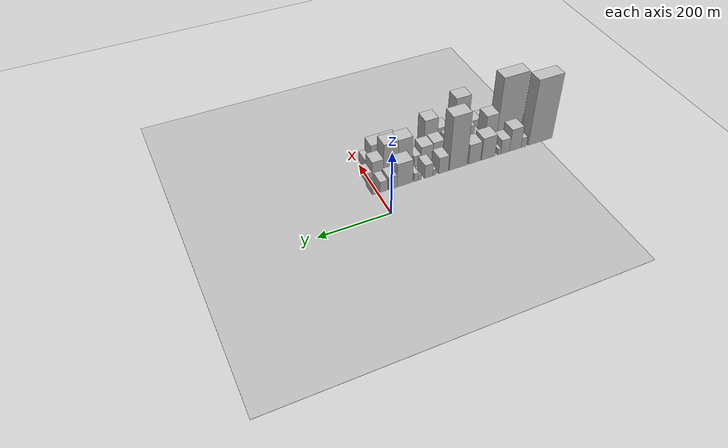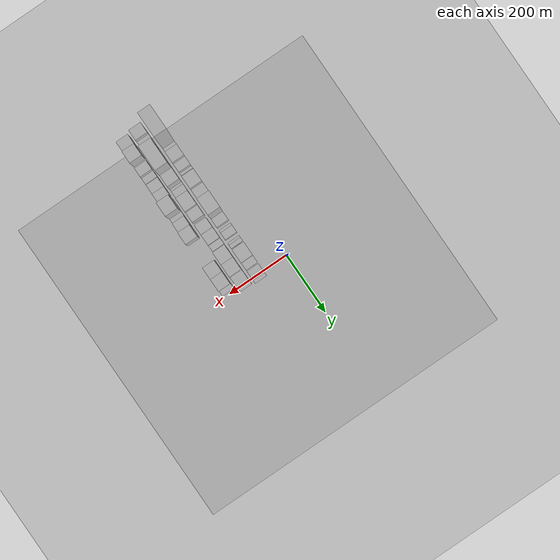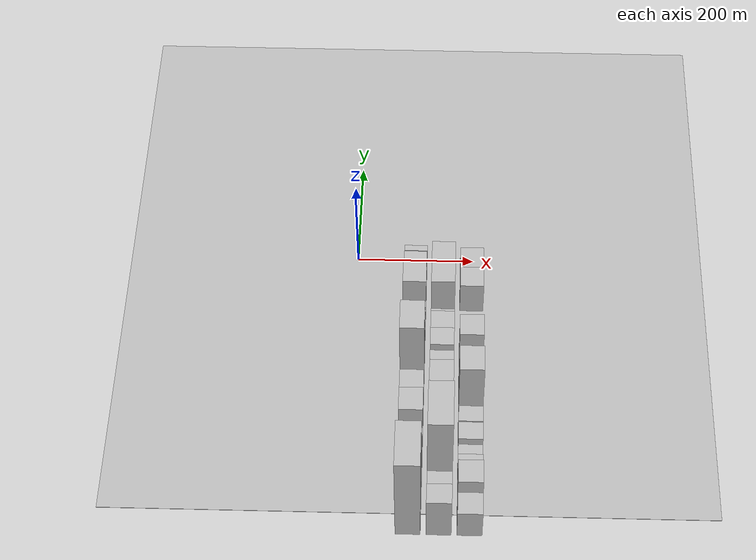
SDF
<sdf version="1.6">
 <world name="default">
  <include><name>ground_plane_1</name><uri>model://HANNAS_ground_plane</uri></include>
  <include>
   <name>ground_plane_2</name>
   <uri>model://HANNAS_ground_plane</uri>
   <pose>100 0 0  0 0 0</pose>
  </include>
  <model name="building_1">
   <static>1</static>
   <pose>100.0000 -496.9513 0 0.000000 0.000000 0.000000</pose>
   <link name="link">
    <pose>0 0 109.50 0 0 0</pose>
    <collision name="collision"><geometry><box><size>40.0000 78.0974 219.0000</size></box></geometry></collision>
    <visual name="visual">
     <cast_shadows>0</cast_shadows>
     <geometry><box><size>40.0000 78.0974 219.0000</size></box></geometry>
     <material>
      <script>
       <uri>model://HANNAS_wall/materials/scripts</uri>
       <uri>model://HANNAS_wall/materials/textures</uri>
       <name>vrc/HANNAS_wall</name>
      </script>
     </material>
    </visual>
   </link>
  </model>
  <model name="building_2">
   <static>1</static>
   <pose>100.0000 -443.2013 0 0.000000 0.000000 0.000000</pose>
   <link name="link">
    <pose>0 0 16.50 0 0 0</pose>
    <collision name="collision"><geometry><box><size>40.0000 17.4027 33.0000</size></box></geometry></collision>
    <visual name="visual">
     <cast_shadows>0</cast_shadows>
     <geometry><box><size>40.0000 17.4027 33.0000</size></box></geometry>
     <material>
      <script>
       <uri>model://HANNAS_wall/materials/scripts</uri>
       <uri>model://HANNAS_wall/materials/textures</uri>
       <name>vrc/HANNAS_wall</name>
      </script>
     </material>
    </visual>
   </link>
  </model>
  <model name="building_3">
   <static>1</static>
   <pose>100.0000 -415.7356 0 0.000000 0.000000 0.000000</pose>
   <link name="link">
    <pose>0 0 37.50 0 0 0</pose>
    <collision name="collision"><geometry><box><size>40.0000 37.5286 75.0000</size></box></geometry></collision>
    <visual name="visual">
     <cast_shadows>0</cast_shadows>
     <geometry><box><size>40.0000 37.5286 75.0000</size></box></geometry>
     <material>
      <script>
       <uri>model://HANNAS_wall/materials/scripts</uri>
       <uri>model://HANNAS_wall/materials/textures</uri>
       <name>vrc/HANNAS_wall</name>
      </script>
     </material>
    </visual>
   </link>
  </model>
  <model name="building_4">
   <static>1</static>
   <pose>100.0000 -382.7974 0 0.000000 0.000000 0.000000</pose>
   <link name="link">
    <pose>0 0 24.00 0 0 0</pose>
    <collision name="collision"><geometry><box><size>40.0000 28.3478 48.0000</size></box></geometry></collision>
    <visual name="visual">
     <cast_shadows>0</cast_shadows>
     <geometry><box><size>40.0000 28.3478 48.0000</size></box></geometry>
     <material>
      <script>
       <uri>model://HANNAS_wall/materials/scripts</uri>
       <uri>model://HANNAS_wall/materials/textures</uri>
       <name>vrc/HANNAS_wall</name>
      </script>
     </material>
    </visual>
   </link>
  </model>
  <model name="building_5">
   <static>1</static>
   <pose>100.0000 -364.3209 0 0.000000 0.000000 0.000000</pose>
   <link name="link">
    <pose>0 0 10.50 0 0 0</pose>
    <collision name="collision"><geometry><box><size>40.0000 8.6052 21.0000</size></box></geometry></collision>
    <visual name="visual">
     <cast_shadows>0</cast_shadows>
     <geometry><box><size>40.0000 8.6052 21.0000</size></box></geometry>
     <material>
      <script>
       <uri>model://HANNAS_wall/materials/scripts</uri>
       <uri>model://HANNAS_wall/materials/textures</uri>
       <name>vrc/HANNAS_wall</name>
      </script>
     </material>
    </visual>
   </link>
  </model>
  <model name="building_6">
   <static>1</static>
   <pose>100.0000 -329.7746 0 0.000000 0.000000 0.000000</pose>
   <link name="link">
    <pose>0 0 37.50 0 0 0</pose>
    <collision name="collision"><geometry><box><size>40.0000 42.4875 75.0000</size></box></geometry></collision>
    <visual name="visual">
     <cast_shadows>0</cast_shadows>
     <geometry><box><size>40.0000 42.4875 75.0000</size></box></geometry>
     <material>
      <script>
       <uri>model://HANNAS_wall/materials/scripts</uri>
       <uri>model://HANNAS_wall/materials/textures</uri>
       <name>vrc/HANNAS_wall</name>
      </script>
     </material>
    </visual>
   </link>
  </model>
  <model name="building_7">
   <static>1</static>
   <pose>100.0000 -287.1032 0 0.000000 0.000000 0.000000</pose>
   <link name="link">
    <pose>0 0 33.00 0 0 0</pose>
    <collision name="collision"><geometry><box><size>40.0000 36.8551 66.0000</size></box></geometry></collision>
    <visual name="visual">
     <cast_shadows>0</cast_shadows>
     <geometry><box><size>40.0000 36.8551 66.0000</size></box></geometry>
     <material>
      <script>
       <uri>model://HANNAS_wall/materials/scripts</uri>
       <uri>model://HANNAS_wall/materials/textures</uri>
       <name>vrc/HANNAS_wall</name>
      </script>
     </material>
    </visual>
   </link>
  </model>
  <model name="building_8">
   <static>1</static>
   <pose>100.0000 -236.5073 0 0.000000 0.000000 0.000000</pose>
   <link name="link">
    <pose>0 0 90.00 0 0 0</pose>
    <collision name="collision"><geometry><box><size>40.0000 54.3367 180.0000</size></box></geometry></collision>
    <visual name="visual">
     <cast_shadows>0</cast_shadows>
     <geometry><box><size>40.0000 54.3367 180.0000</size></box></geometry>
     <material>
      <script>
       <uri>model://HANNAS_wall/materials/scripts</uri>
       <uri>model://HANNAS_wall/materials/textures</uri>
       <name>vrc/HANNAS_wall</name>
      </script>
     </material>
    </visual>
   </link>
  </model>
  <model name="building_9">
   <static>1</static>
   <pose>100.0000 -191.7698 0 0.000000 0.000000 0.000000</pose>
   <link name="link">
    <pose>0 0 27.00 0 0 0</pose>
    <collision name="collision"><geometry><box><size>40.0000 29.1382 54.0000</size></box></geometry></collision>
    <visual name="visual">
     <cast_shadows>0</cast_shadows>
     <geometry><box><size>40.0000 29.1382 54.0000</size></box></geometry>
     <material>
      <script>
       <uri>model://HANNAS_wall/materials/scripts</uri>
       <uri>model://HANNAS_wall/materials/textures</uri>
       <name>vrc/HANNAS_wall</name>
      </script>
     </material>
    </visual>
   </link>
  </model>
  <model name="building_10">
   <static>1</static>
   <pose>100.0000 -164.3954 0 0.000000 0.000000 0.000000</pose>
   <link name="link">
    <pose>0 0 10.50 0 0 0</pose>
    <collision name="collision"><geometry><box><size>40.0000 9.6106 21.0000</size></box></geometry></collision>
    <visual name="visual">
     <cast_shadows>0</cast_shadows>
     <geometry><box><size>40.0000 9.6106 21.0000</size></box></geometry>
     <material>
      <script>
       <uri>model://HANNAS_wall/materials/scripts</uri>
       <uri>model://HANNAS_wall/materials/textures</uri>
       <name>vrc/HANNAS_wall</name>
      </script>
     </material>
    </visual>
   </link>
  </model>
  <model name="building_11">
   <static>1</static>
   <pose>100.0000 -147.4061 0 0.000000 0.000000 0.000000</pose>
   <link name="link">
    <pose>0 0 22.50 0 0 0</pose>
    <collision name="collision"><geometry><box><size>40.0000 24.3681 45.0000</size></box></geometry></collision>
    <visual name="visual">
     <cast_shadows>0</cast_shadows>
     <geometry><box><size>40.0000 24.3681 45.0000</size></box></geometry>
     <material>
      <script>
       <uri>model://HANNAS_wall/materials/scripts</uri>
       <uri>model://HANNAS_wall/materials/textures</uri>
       <name>vrc/HANNAS_wall</name>
      </script>
     </material>
    </visual>
   </link>
  </model>
  <model name="building_12">
   <static>1</static>
   <pose>100.0000 -121.4864 0 0.000000 0.000000 0.000000</pose>
   <link name="link">
    <pose>0 0 9.00 0 0 0</pose>
    <collision name="collision"><geometry><box><size>40.0000 7.4713 18.0000</size></box></geometry></collision>
    <visual name="visual">
     <cast_shadows>0</cast_shadows>
     <geometry><box><size>40.0000 7.4713 18.0000</size></box></geometry>
     <material>
      <script>
       <uri>model://HANNAS_wall/materials/scripts</uri>
       <uri>model://HANNAS_wall/materials/textures</uri>
       <name>vrc/HANNAS_wall</name>
      </script>
     </material>
    </visual>
   </link>
  </model>
  <model name="building_13">
   <static>1</static>
   <pose>100.0000 -111.4732 0 0.000000 0.000000 0.000000</pose>
   <link name="link">
    <pose>0 0 13.50 0 0 0</pose>
    <collision name="collision"><geometry><box><size>40.0000 12.5551 27.0000</size></box></geometry></collision>
    <visual name="visual">
     <cast_shadows>0</cast_shadows>
     <geometry><box><size>40.0000 12.5551 27.0000</size></box></geometry>
     <material>
      <script>
       <uri>model://HANNAS_wall/materials/scripts</uri>
       <uri>model://HANNAS_wall/materials/textures</uri>
       <name>vrc/HANNAS_wall</name>
      </script>
     </material>
    </visual>
   </link>
  </model>
  <model name="building_14">
   <static>1</static>
   <pose>100.0000 -77.4347 0 0.000000 0.000000 0.000000</pose>
   <link name="link">
    <pose>0 0 39.00 0 0 0</pose>
    <collision name="collision"><geometry><box><size>40.0000 45.5219 78.0000</size></box></geometry></collision>
    <visual name="visual">
     <cast_shadows>0</cast_shadows>
     <geometry><box><size>40.0000 45.5219 78.0000</size></box></geometry>
     <material>
      <script>
       <uri>model://HANNAS_wall/materials/scripts</uri>
       <uri>model://HANNAS_wall/materials/textures</uri>
       <name>vrc/HANNAS_wall</name>
      </script>
     </material>
    </visual>
   </link>
  </model>
  <model name="building_15">
   <static>1</static>
   <pose>100.0000 -42.3137 0 0.000000 0.000000 0.000000</pose>
   <link name="link">
    <pose>0 0 21.00 0 0 0</pose>
    <collision name="collision"><geometry><box><size>40.0000 24.7201 42.0000</size></box></geometry></collision>
    <visual name="visual">
     <cast_shadows>0</cast_shadows>
     <geometry><box><size>40.0000 24.7201 42.0000</size></box></geometry>
     <material>
      <script>
       <uri>model://HANNAS_wall/materials/scripts</uri>
       <uri>model://HANNAS_wall/materials/textures</uri>
       <name>vrc/HANNAS_wall</name>
      </script>
     </material>
    </visual>
   </link>
  </model>
  <model name="building_16">
   <static>1</static>
   <pose>100.0000 -16.2429 0 0.000000 0.000000 0.000000</pose>
   <link name="link">
    <pose>0 0 18.00 0 0 0</pose>
    <collision name="collision"><geometry><box><size>40.0000 21.4215 36.0000</size></box></geometry></collision>
    <visual name="visual">
     <cast_shadows>0</cast_shadows>
     <geometry><box><size>40.0000 21.4215 36.0000</size></box></geometry>
     <material>
      <script>
       <uri>model://HANNAS_wall/materials/scripts</uri>
       <uri>model://HANNAS_wall/materials/textures</uri>
       <name>vrc/HANNAS_wall</name>
      </script>
     </material>
    </visual>
   </link>
  </model>
  <model name="building_17">
   <static>1</static>
   <pose>100.0000 10.2576 0 0.000000 0.000000 0.000000</pose>
   <link name="link">
    <pose>0 0 12.00 0 0 0</pose>
    <collision name="collision"><geometry><box><size>40.0000 11.5795 24.0000</size></box></geometry></collision>
    <visual name="visual">
     <cast_shadows>0</cast_shadows>
     <geometry><box><size>40.0000 11.5795 24.0000</size></box></geometry>
     <material>
      <script>
       <uri>model://HANNAS_wall/materials/scripts</uri>
       <uri>model://HANNAS_wall/materials/textures</uri>
       <name>vrc/HANNAS_wall</name>
      </script>
     </material>
    </visual>
   </link>
  </model>
  <model name="building_32">
   <static>1</static>
   <pose>149.0000 -518.9224 0 0.000000 0.000000 0.000000</pose>
   <link name="link">
    <pose>0 0 52.50 0 0 0</pose>
    <collision name="collision"><geometry><box><size>40.0000 34.1551 105.0000</size></box></geometry></collision>
    <visual name="visual">
     <cast_shadows>0</cast_shadows>
     <geometry><box><size>40.0000 34.1551 105.0000</size></box></geometry>
     <material>
      <script>
       <uri>model://HANNAS_wall/materials/scripts</uri>
       <uri>model://HANNAS_wall/materials/textures</uri>
       <name>vrc/HANNAS_wall</name>
      </script>
     </material>
    </visual>
   </link>
  </model>
  <model name="building_33">
   <static>1</static>
   <pose>149.0000 -482.2454 0 0.000000 0.000000 0.000000</pose>
   <link name="link">
    <pose>0 0 37.50 0 0 0</pose>
    <collision name="collision"><geometry><box><size>40.0000 39.1991 75.0000</size></box></geometry></collision>
    <visual name="visual">
     <cast_shadows>0</cast_shadows>
     <geometry><box><size>40.0000 39.1991 75.0000</size></box></geometry>
     <material>
      <script>
       <uri>model://HANNAS_wall/materials/scripts</uri>
       <uri>model://HANNAS_wall/materials/textures</uri>
       <name>vrc/HANNAS_wall</name>
      </script>
     </material>
    </visual>
   </link>
  </model>
  <model name="building_34">
   <static>1</static>
   <pose>149.0000 -423.0927 0 0.000000 0.000000 0.000000</pose>
   <link name="link">
    <pose>0 0 108.00 0 0 0</pose>
    <collision name="collision"><geometry><box><size>40.0000 79.1063 216.0000</size></box></geometry></collision>
    <visual name="visual">
     <cast_shadows>0</cast_shadows>
     <geometry><box><size>40.0000 79.1063 216.0000</size></box></geometry>
     <material>
      <script>
       <uri>model://HANNAS_wall/materials/scripts</uri>
       <uri>model://HANNAS_wall/materials/textures</uri>
       <name>vrc/HANNAS_wall</name>
      </script>
     </material>
    </visual>
   </link>
  </model>
  <model name="building_35">
   <static>1</static>
   <pose>149.0000 -364.4525 0 0.000000 0.000000 0.000000</pose>
   <link name="link">
    <pose>0 0 51.00 0 0 0</pose>
    <collision name="collision"><geometry><box><size>40.0000 38.1742 102.0000</size></box></geometry></collision>
    <visual name="visual">
     <cast_shadows>0</cast_shadows>
     <geometry><box><size>40.0000 38.1742 102.0000</size></box></geometry>
     <material>
      <script>
       <uri>model://HANNAS_wall/materials/scripts</uri>
       <uri>model://HANNAS_wall/materials/textures</uri>
       <name>vrc/HANNAS_wall</name>
      </script>
     </material>
    </visual>
   </link>
  </model>
  <model name="building_36">
   <static>1</static>
   <pose>149.0000 -340.2074 0 0.000000 0.000000 0.000000</pose>
   <link name="link">
    <pose>0 0 12.00 0 0 0</pose>
    <collision name="collision"><geometry><box><size>40.0000 10.3160 24.0000</size></box></geometry></collision>
    <visual name="visual">
     <cast_shadows>0</cast_shadows>
     <geometry><box><size>40.0000 10.3160 24.0000</size></box></geometry>
     <material>
      <script>
       <uri>model://HANNAS_wall/materials/scripts</uri>
       <uri>model://HANNAS_wall/materials/textures</uri>
       <name>vrc/HANNAS_wall</name>
      </script>
     </material>
    </visual>
   </link>
  </model>
  <model name="building_37">
   <static>1</static>
   <pose>149.0000 -321.8063 0 0.000000 0.000000 0.000000</pose>
   <link name="link">
    <pose>0 0 24.00 0 0 0</pose>
    <collision name="collision"><geometry><box><size>40.0000 26.4862 48.0000</size></box></geometry></collision>
    <visual name="visual">
     <cast_shadows>0</cast_shadows>
     <geometry><box><size>40.0000 26.4862 48.0000</size></box></geometry>
     <material>
      <script>
       <uri>model://HANNAS_wall/materials/scripts</uri>
       <uri>model://HANNAS_wall/materials/textures</uri>
       <name>vrc/HANNAS_wall</name>
      </script>
     </material>
    </visual>
   </link>
  </model>
  <model name="building_38">
   <static>1</static>
   <pose>149.0000 -285.0739 0 0.000000 0.000000 0.000000</pose>
   <link name="link">
    <pose>0 0 43.50 0 0 0</pose>
    <collision name="collision"><geometry><box><size>40.0000 46.9787 87.0000</size></box></geometry></collision>
    <visual name="visual">
     <cast_shadows>0</cast_shadows>
     <geometry><box><size>40.0000 46.9787 87.0000</size></box></geometry>
     <material>
      <script>
       <uri>model://HANNAS_wall/materials/scripts</uri>
       <uri>model://HANNAS_wall/materials/textures</uri>
       <name>vrc/HANNAS_wall</name>
      </script>
     </material>
    </visual>
   </link>
  </model>
  <model name="building_39">
   <static>1</static>
   <pose>149.0000 -244.6582 0 0.000000 0.000000 0.000000</pose>
   <link name="link">
    <pose>0 0 31.50 0 0 0</pose>
    <collision name="collision"><geometry><box><size>40.0000 33.8528 63.0000</size></box></geometry></collision>
    <visual name="visual">
     <cast_shadows>0</cast_shadows>
     <geometry><box><size>40.0000 33.8528 63.0000</size></box></geometry>
     <material>
      <script>
       <uri>model://HANNAS_wall/materials/scripts</uri>
       <uri>model://HANNAS_wall/materials/textures</uri>
       <name>vrc/HANNAS_wall</name>
      </script>
     </material>
    </visual>
   </link>
  </model>
  <model name="building_40">
   <static>1</static>
   <pose>149.0000 -201.6952 0 0.000000 0.000000 0.000000</pose>
   <link name="link">
    <pose>0 0 33.00 0 0 0</pose>
    <collision name="collision"><geometry><box><size>40.0000 34.0731 66.0000</size></box></geometry></collision>
    <visual name="visual">
     <cast_shadows>0</cast_shadows>
     <geometry><box><size>40.0000 34.0731 66.0000</size></box></geometry>
     <material>
      <script>
       <uri>model://HANNAS_wall/materials/scripts</uri>
       <uri>model://HANNAS_wall/materials/textures</uri>
       <name>vrc/HANNAS_wall</name>
      </script>
     </material>
    </visual>
   </link>
  </model>
  <model name="building_41">
   <static>1</static>
   <pose>149.0000 -166.7719 0 0.000000 0.000000 0.000000</pose>
   <link name="link">
    <pose>0 0 31.50 0 0 0</pose>
    <collision name="collision"><geometry><box><size>40.0000 35.7736 63.0000</size></box></geometry></collision>
    <visual name="visual">
     <cast_shadows>0</cast_shadows>
     <geometry><box><size>40.0000 35.7736 63.0000</size></box></geometry>
     <material>
      <script>
       <uri>model://HANNAS_wall/materials/scripts</uri>
       <uri>model://HANNAS_wall/materials/textures</uri>
       <name>vrc/HANNAS_wall</name>
      </script>
     </material>
    </visual>
   </link>
  </model>
  <model name="building_42">
   <static>1</static>
   <pose>149.0000 -138.5100 0 0.000000 0.000000 0.000000</pose>
   <link name="link">
    <pose>0 0 19.50 0 0 0</pose>
    <collision name="collision"><geometry><box><size>40.0000 20.7500 39.0000</size></box></geometry></collision>
    <visual name="visual">
     <cast_shadows>0</cast_shadows>
     <geometry><box><size>40.0000 20.7500 39.0000</size></box></geometry>
     <material>
      <script>
       <uri>model://HANNAS_wall/materials/scripts</uri>
       <uri>model://HANNAS_wall/materials/textures</uri>
       <name>vrc/HANNAS_wall</name>
      </script>
     </material>
    </visual>
   </link>
  </model>
  <model name="building_43">
   <static>1</static>
   <pose>149.0000 -102.0988 0 0.000000 0.000000 0.000000</pose>
   <link name="link">
    <pose>0 0 55.50 0 0 0</pose>
    <collision name="collision"><geometry><box><size>40.0000 42.0724 111.0000</size></box></geometry></collision>
    <visual name="visual">
     <cast_shadows>0</cast_shadows>
     <geometry><box><size>40.0000 42.0724 111.0000</size></box></geometry>
     <material>
      <script>
       <uri>model://HANNAS_wall/materials/scripts</uri>
       <uri>model://HANNAS_wall/materials/textures</uri>
       <name>vrc/HANNAS_wall</name>
      </script>
     </material>
    </visual>
   </link>
  </model>
  <model name="building_44">
   <static>1</static>
   <pose>149.0000 -60.1409 0 0.000000 0.000000 0.000000</pose>
   <link name="link">
    <pose>0 0 55.50 0 0 0</pose>
    <collision name="collision"><geometry><box><size>40.0000 41.8435 111.0000</size></box></geometry></collision>
    <visual name="visual">
     <cast_shadows>0</cast_shadows>
     <geometry><box><size>40.0000 41.8435 111.0000</size></box></geometry>
     <material>
      <script>
       <uri>model://HANNAS_wall/materials/scripts</uri>
       <uri>model://HANNAS_wall/materials/textures</uri>
       <name>vrc/HANNAS_wall</name>
      </script>
     </material>
    </visual>
   </link>
  </model>
  <model name="building_45">
   <static>1</static>
   <pose>149.0000 -22.5852 0 0.000000 0.000000 0.000000</pose>
   <link name="link">
    <pose>0 0 31.50 0 0 0</pose>
    <collision name="collision"><geometry><box><size>40.0000 33.2679 63.0000</size></box></geometry></collision>
    <visual name="visual">
     <cast_shadows>0</cast_shadows>
     <geometry><box><size>40.0000 33.2679 63.0000</size></box></geometry>
     <material>
      <script>
       <uri>model://HANNAS_wall/materials/scripts</uri>
       <uri>model://HANNAS_wall/materials/textures</uri>
       <name>vrc/HANNAS_wall</name>
      </script>
     </material>
    </visual>
   </link>
  </model>
  <model name="building_46">
   <static>1</static>
   <pose>149.0000 2.7122 0 0.000000 0.000000 0.000000</pose>
   <link name="link">
    <pose>0 0 15.00 0 0 0</pose>
    <collision name="collision"><geometry><box><size>40.0000 17.3268 30.0000</size></box></geometry></collision>
    <visual name="visual">
     <cast_shadows>0</cast_shadows>
     <geometry><box><size>40.0000 17.3268 30.0000</size></box></geometry>
     <material>
      <script>
       <uri>model://HANNAS_wall/materials/scripts</uri>
       <uri>model://HANNAS_wall/materials/textures</uri>
       <name>vrc/HANNAS_wall</name>
      </script>
     </material>
    </visual>
   </link>
  </model>
  <model name="building_62">
   <static>1</static>
   <pose>198.0000 -516.9748 0 0.000000 0.000000 0.000000</pose>
   <link name="link">
    <pose>0 0 36.00 0 0 0</pose>
    <collision name="collision"><geometry><box><size>40.0000 38.0505 72.0000</size></box></geometry></collision>
    <visual name="visual">
     <cast_shadows>0</cast_shadows>
     <geometry><box><size>40.0000 38.0505 72.0000</size></box></geometry>
     <material>
      <script>
       <uri>model://HANNAS_wall/materials/scripts</uri>
       <uri>model://HANNAS_wall/materials/textures</uri>
       <name>vrc/HANNAS_wall</name>
      </script>
     </material>
    </visual>
   </link>
  </model>
  <model name="building_63">
   <static>1</static>
   <pose>198.0000 -478.1321 0 0.000000 0.000000 0.000000</pose>
   <link name="link">
    <pose>0 0 52.50 0 0 0</pose>
    <collision name="collision"><geometry><box><size>40.0000 39.6348 105.0000</size></box></geometry></collision>
    <visual name="visual">
     <cast_shadows>0</cast_shadows>
     <geometry><box><size>40.0000 39.6348 105.0000</size></box></geometry>
     <material>
      <script>
       <uri>model://HANNAS_wall/materials/scripts</uri>
       <uri>model://HANNAS_wall/materials/textures</uri>
       <name>vrc/HANNAS_wall</name>
      </script>
     </material>
    </visual>
   </link>
  </model>
  <model name="building_64">
   <static>1</static>
   <pose>198.0000 -453.7022 0 0.000000 0.000000 0.000000</pose>
   <link name="link">
    <pose>0 0 10.50 0 0 0</pose>
    <collision name="collision"><geometry><box><size>40.0000 9.2250 21.0000</size></box></geometry></collision>
    <visual name="visual">
     <cast_shadows>0</cast_shadows>
     <geometry><box><size>40.0000 9.2250 21.0000</size></box></geometry>
     <material>
      <script>
       <uri>model://HANNAS_wall/materials/scripts</uri>
       <uri>model://HANNAS_wall/materials/textures</uri>
       <name>vrc/HANNAS_wall</name>
      </script>
     </material>
    </visual>
   </link>
  </model>
  <model name="building_65">
   <static>1</static>
   <pose>198.0000 -433.8859 0 0.000000 0.000000 0.000000</pose>
   <link name="link">
    <pose>0 0 27.00 0 0 0</pose>
    <collision name="collision"><geometry><box><size>40.0000 30.4077 54.0000</size></box></geometry></collision>
    <visual name="visual">
     <cast_shadows>0</cast_shadows>
     <geometry><box><size>40.0000 30.4077 54.0000</size></box></geometry>
     <material>
      <script>
       <uri>model://HANNAS_wall/materials/scripts</uri>
       <uri>model://HANNAS_wall/materials/textures</uri>
       <name>vrc/HANNAS_wall</name>
      </script>
     </material>
    </visual>
   </link>
  </model>
  <model name="building_66">
   <static>1</static>
   <pose>198.0000 -404.8869 0 0.000000 0.000000 0.000000</pose>
   <link name="link">
    <pose>0 0 21.00 0 0 0</pose>
    <collision name="collision"><geometry><box><size>40.0000 21.5903 42.0000</size></box></geometry></collision>
    <visual name="visual">
     <cast_shadows>0</cast_shadows>
     <geometry><box><size>40.0000 21.5903 42.0000</size></box></geometry>
     <material>
      <script>
       <uri>model://HANNAS_wall/materials/scripts</uri>
       <uri>model://HANNAS_wall/materials/textures</uri>
       <name>vrc/HANNAS_wall</name>
      </script>
     </material>
    </visual>
   </link>
  </model>
  <model name="building_67">
   <static>1</static>
   <pose>198.0000 -375.3028 0 0.000000 0.000000 0.000000</pose>
   <link name="link">
    <pose>0 0 27.00 0 0 0</pose>
    <collision name="collision"><geometry><box><size>40.0000 31.5779 54.0000</size></box></geometry></collision>
    <visual name="visual">
     <cast_shadows>0</cast_shadows>
     <geometry><box><size>40.0000 31.5779 54.0000</size></box></geometry>
     <material>
      <script>
       <uri>model://HANNAS_wall/materials/scripts</uri>
       <uri>model://HANNAS_wall/materials/textures</uri>
       <name>vrc/HANNAS_wall</name>
      </script>
     </material>
    </visual>
   </link>
  </model>
  <model name="building_68">
   <static>1</static>
   <pose>198.0000 -345.0919 0 0.000000 0.000000 0.000000</pose>
   <link name="link">
    <pose>0 0 28.50 0 0 0</pose>
    <collision name="collision"><geometry><box><size>40.0000 28.8438 57.0000</size></box></geometry></collision>
    <visual name="visual">
     <cast_shadows>0</cast_shadows>
     <geometry><box><size>40.0000 28.8438 57.0000</size></box></geometry>
     <material>
      <script>
       <uri>model://HANNAS_wall/materials/scripts</uri>
       <uri>model://HANNAS_wall/materials/textures</uri>
       <name>vrc/HANNAS_wall</name>
      </script>
     </material>
    </visual>
   </link>
  </model>
  <model name="building_69">
   <static>1</static>
   <pose>198.0000 -297.7398 0 0.000000 0.000000 0.000000</pose>
   <link name="link">
    <pose>0 0 75.00 0 0 0</pose>
    <collision name="collision"><geometry><box><size>40.0000 45.8606 150.0000</size></box></geometry></collision>
    <visual name="visual">
     <cast_shadows>0</cast_shadows>
     <geometry><box><size>40.0000 45.8606 150.0000</size></box></geometry>
     <material>
      <script>
       <uri>model://HANNAS_wall/materials/scripts</uri>
       <uri>model://HANNAS_wall/materials/textures</uri>
       <name>vrc/HANNAS_wall</name>
      </script>
     </material>
    </visual>
   </link>
  </model>
  <model name="building_70">
   <static>1</static>
   <pose>198.0000 -266.1065 0 0.000000 0.000000 0.000000</pose>
   <link name="link">
    <pose>0 0 16.50 0 0 0</pose>
    <collision name="collision"><geometry><box><size>40.0000 17.4059 33.0000</size></box></geometry></collision>
    <visual name="visual">
     <cast_shadows>0</cast_shadows>
     <geometry><box><size>40.0000 17.4059 33.0000</size></box></geometry>
     <material>
      <script>
       <uri>model://HANNAS_wall/materials/scripts</uri>
       <uri>model://HANNAS_wall/materials/textures</uri>
       <name>vrc/HANNAS_wall</name>
      </script>
     </material>
    </visual>
   </link>
  </model>
  <model name="building_71">
   <static>1</static>
   <pose>198.0000 -240.6040 0 0.000000 0.000000 0.000000</pose>
   <link name="link">
    <pose>0 0 33.00 0 0 0</pose>
    <collision name="collision"><geometry><box><size>40.0000 33.5990 66.0000</size></box></geometry></collision>
    <visual name="visual">
     <cast_shadows>0</cast_shadows>
     <geometry><box><size>40.0000 33.5990 66.0000</size></box></geometry>
     <material>
      <script>
       <uri>model://HANNAS_wall/materials/scripts</uri>
       <uri>model://HANNAS_wall/materials/textures</uri>
       <name>vrc/HANNAS_wall</name>
      </script>
     </material>
    </visual>
   </link>
  </model>
  <model name="building_72">
   <static>1</static>
   <pose>198.0000 -203.7365 0 0.000000 0.000000 0.000000</pose>
   <link name="link">
    <pose>0 0 52.50 0 0 0</pose>
    <collision name="collision"><geometry><box><size>40.0000 40.1361 105.0000</size></box></geometry></collision>
    <visual name="visual">
     <cast_shadows>0</cast_shadows>
     <geometry><box><size>40.0000 40.1361 105.0000</size></box></geometry>
     <material>
      <script>
       <uri>model://HANNAS_wall/materials/scripts</uri>
       <uri>model://HANNAS_wall/materials/textures</uri>
       <name>vrc/HANNAS_wall</name>
      </script>
     </material>
    </visual>
   </link>
  </model>
  <model name="building_73">
   <static>1</static>
   <pose>198.0000 -85.3407 0 0.000000 0.000000 0.000000</pose>
   <link name="link">
    <pose>0 0 37.50 0 0 0</pose>
    <collision name="collision"><geometry><box><size>40.0000 39.5518 75.0000</size></box></geometry></collision>
    <visual name="visual">
     <cast_shadows>0</cast_shadows>
     <geometry><box><size>40.0000 39.5518 75.0000</size></box></geometry>
     <material>
      <script>
       <uri>model://HANNAS_wall/materials/scripts</uri>
       <uri>model://HANNAS_wall/materials/textures</uri>
       <name>vrc/HANNAS_wall</name>
      </script>
     </material>
    </visual>
   </link>
  </model>
  <model name="building_74">
   <static>1</static>
   <pose>198.0000 -45.0438 0 0.000000 0.000000 0.000000</pose>
   <link name="link">
    <pose>0 0 37.50 0 0 0</pose>
    <collision name="collision"><geometry><box><size>40.0000 41.0420 75.0000</size></box></geometry></collision>
    <visual name="visual">
     <cast_shadows>0</cast_shadows>
     <geometry><box><size>40.0000 41.0420 75.0000</size></box></geometry>
     <material>
      <script>
       <uri>model://HANNAS_wall/materials/scripts</uri>
       <uri>model://HANNAS_wall/materials/textures</uri>
       <name>vrc/HANNAS_wall</name>
      </script>
     </material>
    </visual>
   </link>
  </model>
  <model name="building_75">
   <static>1</static>
   <pose>198.0000 -15.6472 0 0.000000 0.000000 0.000000</pose>
   <link name="link">
    <pose>0 0 16.50 0 0 0</pose>
    <collision name="collision"><geometry><box><size>40.0000 17.7510 33.0000</size></box></geometry></collision>
    <visual name="visual">
     <cast_shadows>0</cast_shadows>
     <geometry><box><size>40.0000 17.7510 33.0000</size></box></geometry>
     <material>
      <script>
       <uri>model://HANNAS_wall/materials/scripts</uri>
       <uri>model://HANNAS_wall/materials/textures</uri>
       <name>vrc/HANNAS_wall</name>
      </script>
     </material>
    </visual>
   </link>
  </model>
 </world>
</sdf>
